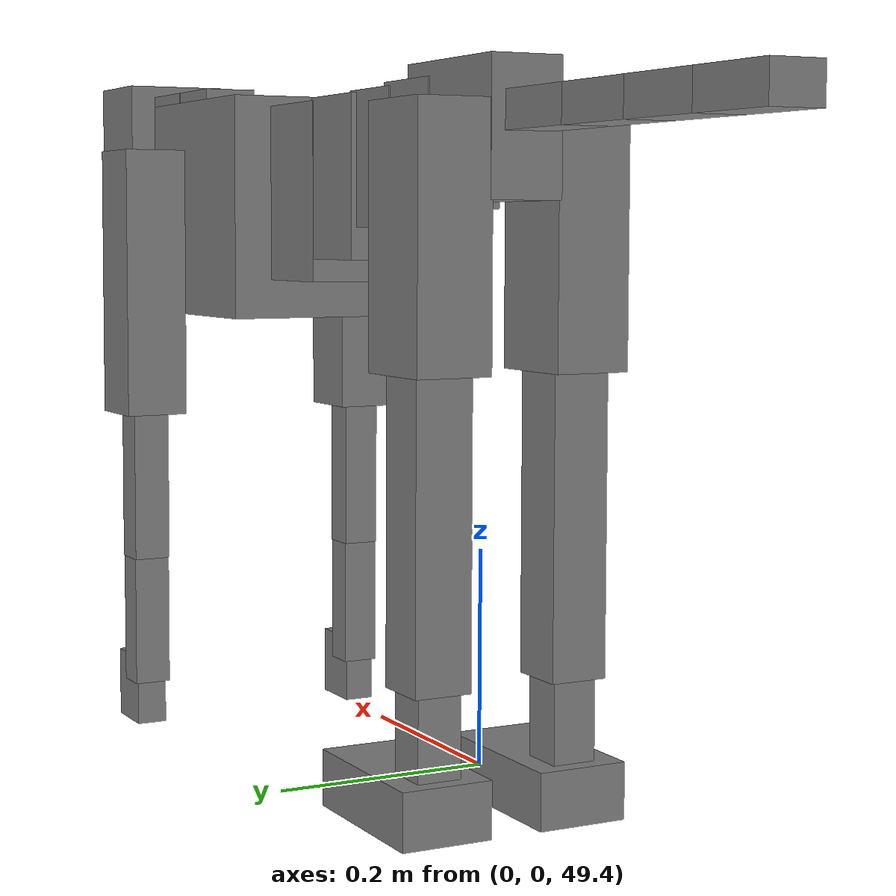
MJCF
<mujoco model="dog">

    <default>
        <joint armature="0.02" stiffness="1" damping="0.2" limited="true"/>
        <geom condim="3" friction="1 0.05 0.05" margin="0.01"/>
        <motor ctrllimited="true" ctrlrange="-1.0 1.0" forcelimited="true" gear="50"/>
    </default>

    <compiler inertiafromgeom="true" angle="radian"/>

    <option timestep="0.016" iterations="50" tolerance="1e-10" solver="Newton" jacobian="dense" cone="pyramidal"/>

    <size nconmax="20000" njmax="60000" nstack="5000000"/>
    <visual>
        <map force="0.1" zfar="30"/>
        <rgba haze="0.15 0.25 0.35 1"/>
        <quality shadowsize="2048"/>
        <global offwidth="800" offheight="800"/>
    </visual>

    <asset>
        <texture type="skybox" builtin="gradient" rgb1="0.3 0.5 0.7" rgb2="0 0 0" width="512" height="512"/>
        <texture name="texplane" type="2d" builtin="checker" rgb1=".2 .3 .4" rgb2=".1 0.15 0.2" width="512" height="512"
                 mark="cross" markrgb=".8 .8 .8"/>
        <texture name="texgeom" type="cube" builtin="flat" mark="cross" width="127" height="1278" rgb1="0.8 0.6 0.4"
                 rgb2="0.8 0.6 0.4" markrgb="1 1 1" random="0.01"/>

        <material name="matplane" reflectance="0.3" texture="texplane" texrepeat="1 1" texuniform="true"/>
        <material name="matgeom" texture="texgeom" texuniform="true" rgba="0.8 0.6 .4 1"/>
    </asset>

    <worldbody>
        <geom name="floor" pos="0 0 0" size="0 0 .25" type="plane" material="matplane" condim="3"/>

        <light directional="false" diffuse=".2 .2 .2" specular="0 0 0" pos="0 0 5" dir="0 0 -1" castshadow="false"/>
        <light mode="targetbodycom" target="torso" directional="false" diffuse=".8 .8 .8" specular="0.3 0.3 0.3"
               pos="0 0 4.0" dir="0 0 -1"/>

        <body name="root" pos="0 0 50">
            <freejoint name="root_1"/>
            <geom type="box" pos="0 0 -0.02" size="0.0774  0.0358  0.063" density="2030"/>

            <body name="spine1" pos="0.054 0 0">
                <joint name="spine1_y" axis="0 1 0" range="0 0.7" limited="true"/>
                <geom type="box" pos="0.02375 0 -0.03" size="0.04375  0.0375  0.05985" density="2030"/>

                <body name="spine2" pos="0.0612 0 0">
                    <joint name="spine2_y" axis="0 1 0" range="-0.15 0.15" limited="true"/>
                    <geom type="box" pos="0.03555  0  -0.04" size="0.04055  0.039  0.06615" density="2030"/>

                    <body name="spine3" pos="0.0730 0 0">
                        <joint name="spine3_y" axis="0 1 0" range="-0.15 0.15" limited="true"/>
                        <geom type="box" pos="0.03555  0  -0.057" size="0.04555  0.0445  0.081" density="2030"/>

                        <body name="spine4" pos="0.0780 0 0">
                            <joint name="spine4_y" axis="0 1 0" range="-0.15 0.15" limited="true"/>
                            <geom type="box" pos="0.05265  0  -0.07" size="0.05265  0.045  0.09135" density="2030"/>

                            <body name="torso" pos="0.1082 0 0">
                                <joint name="torso_y" axis="0 1 0" range="-0.15 0.15" limited="true"/>
                                <geom type="box" pos="0.11925  0  -0.085" size="0.11925  0.085  0.11745"
                                      density="2030"/>

                                <body name="neck1" pos="0.2160  0   0.0180">
                                    <joint name="neck1_y" axis="0 1 0" range="-1.2  -1" limited="true"/>
                                    <geom type="box" pos="0.0423  0  0" size="0.0423  0.03  0.036" density="2325"/>

                                    <body name="neck2" pos="0.0853  0  0">
                                        <joint name="neck2_y" axis="0 1 0" range="0.1  0" limited="true"/>
                                        <geom type="box" pos="0.0423  0  0" size="0.0423  0.03  0.036" density="2325"/>

                                        <body name="head" pos="0.0853  0  0">
                                            <joint name="head_y" axis="0 1 0" range="-0.3  -0.2" limited="true"/>
                                            <geom type="box" pos="0.0531  0  -0.055" size="0.0531  0.06  0.1044"
                                                  density="4030"/>

                                        </body>
                                    </body>
                                </body>

                                <body name="front_shoulder" pos="0.156  0   -0.0480">
                                    <joint name="front_shoulder_y" axis="0 1 0" range="-1 1.5" limited="true"/>
                                    <geom type="box" pos="0 0.13 -0.1187" size="0.0396  0.0339  0.1454" density="1158"/>
                                    <geom type="box" pos="0 -0.13 -0.1187" size="0.0396  0.0339  0.1454"
                                          density="1158"/>

                                    <body name="front_elbow" pos="0  0  -0.2375">
                                        <joint name="front_elbow_y" axis="0 1 0" range="-2 0" limited="true"/>
                                        <geom type="box" pos="0 0.13 -0.0947" size="0.0194  0.0198  0.0947"
                                              density="1081"/>
                                        <geom type="box" pos="0 -0.13 -0.0947" size="0.0194  0.0198  0.0947"
                                              density="1081"/>

                                        <body name="front_wrist" pos="0  0  -0.1893">
                                            <joint name="front_wrist_y" axis="0 1 0" range="-0.2 0" limited="true"/>
                                            <geom type="box" pos="0 0.13 -0.0639" size="0.0176  0.0196  0.0770"
                                                  density="1664"/>
                                            <geom type="box" pos="0 -0.13 -0.0639" size="0.0176  0.0196  0.0770"
                                                  density="1664"/>

                                            <body name="front_finger_end" pos="0  0  -0.1278">
                                                <joint name="front_finger_y" axis="0 1 0" range="-0.4 1"
                                                       limited="true"/>
                                                <geom type="box" pos="0.0162  0.13  -0.0225"
                                                      size="0.0298  0.0162  0.0375" density="1515"/>
                                                <geom type="box" pos="0.0162  -0.13  -0.0225"
                                                      size="0.0298  0.0162  0.0375" density="1515"/>

                                            </body>

                                        </body>
                                    </body>
                                </body>

                            </body>
                        </body>
                    </body>
                </body>
            </body>

            <body name="back_hip" pos="-0.03 0 -0.018">
                <joint name="back_hip_y" axis="0 1 0" range="-1.5 0.3" limited="true"/>
                <geom type="box" pos="0 0.07 -0.0975" size="0.0466  0.0366  0.1203" density="1154"/>
                <geom type="box" pos="0 -0.07 -0.0975" size="0.0466  0.0366  0.1203" density="1154"/>

                <body name="back_knee" pos="0  0  -0.1949">
                    <joint name="back_knee_y" axis="0 1 0" range="0 2.8" limited="true"/>
                    <geom type="box" pos="0 0.07 -0.1445" size="0.0283  0.0279  0.1601" density="1227"/>
                    <geom type="box" pos="0 -0.07 -0.1445" size="0.0283  0.0279  0.1601" density="1227"/>

                    <body name="back_ankle" pos="0  0  -0.2890">
                        <joint name="back_ankle_y" axis="0 1 0" range="-2.2 0" limited="true"/>
                        <geom type="box" pos="0 0.07 -0.0541" size="0.0216  0.0216  0.0653" density="1284"/>
                        <geom type="box" pos="0 -0.07 -0.0541" size="0.0216  0.0216  0.0653" density="1284"/>

                        <body name="back_toe_end" pos="0  0  -0.1082">
                            <joint name="back_toe_y" axis="0 1 0" range="-0.4 1" limited="true"/>
                            <geom type="box" pos="0.0446  0.07  -0.0120" size="0.0817  0.0446  0.0270" density="1515"/>
                            <geom type="box" pos="0.0446  -0.07  -0.0120" size="0.0817  0.0446  0.0270" density="1515"/>

                        </body>
                    </body>
                </body>
            </body>

            <body name="tail1" pos="-0.074 0 -0.006">
                <joint name="tail1_y" axis="0 1 0" range="-0.2 0.2" limited="true"/>
                <geom type="box" pos="-0.0536  0  0" size="0.045  0.025  0.0175" density="1587"/>

                <body name="tail2" pos="-0.09 0 0">
                    <joint name="tail2_y" axis="0 1 0" range="-0.2 0.2" limited="true"/>
                    <geom type="box" pos="-0.0536  0  0" size="0.045  0.025  0.0175" density="1587"/>

                    <body name="tail3" pos="-0.09 0 0">
                        <joint name="tail3_y" axis="0 1 0" range="-0.2 0.2" limited="true"/>
                        <geom type="box" pos="-0.0536  0  0" size="0.045  0.025  0.0175" density="1587"/>

                        <body name="tail4" pos="-0.09 0 0">
                            <joint name="tail4_y" axis="0 1 0" range="-0.2 0.2" limited="true"/>
                            <geom type="box" pos="-0.0536  0  0" size="0.045  0.025  0.0175" density="1587"/>

                        </body>
                    </body>
                </body>
            </body>
        </body>
    </worldbody>

    <actuator>
        <motor joint="spine1_y" forcerange="-150 150     "/>
        <motor joint="spine2_y" forcerange="-150 150     "/>
        <motor joint="spine3_y" forcerange="-150 150     "/>
        <motor joint="spine4_y" forcerange="-150 150     "/>
        <motor joint="torso_y" forcerange="-150 150     "/>
        <motor joint="neck1_y" forcerange="-100 100       "/>
        <motor joint="neck2_y" forcerange="-100 100       "/>
        <motor joint="head_y" forcerange="-150 150       "/>
        <motor joint="front_shoulder_y" forcerange="-190.22 135.51"/>
        <motor joint="front_elbow_y" forcerange="-101.48 142.68"/>
        <motor joint="front_wrist_y" forcerange="-76.26 80.50"/>
        <motor joint="front_finger_y" forcerange="-23.99 22.67"/>
        <motor joint="back_hip_y" forcerange="-355.79 331.65"/>
        <motor joint="back_knee_y" forcerange="-223.26 382.14"/>
        <motor joint="back_angle_y" forcerange="-191.31 54.70"/>
        <motor joint="back_toe_y" forcerange="-137.63 138.96"/>
        <motor joint="tail1_y" forcerange="-50 50     "/>
        <motor joint="tail2_y" forcerange="-50 50     "/>
        <motor joint="tail3_y" forcerange="-50 50     "/>
        <motor joint="tail4_y" forcerange="-50 50     "/>
    </actuator>
</mujoco>
